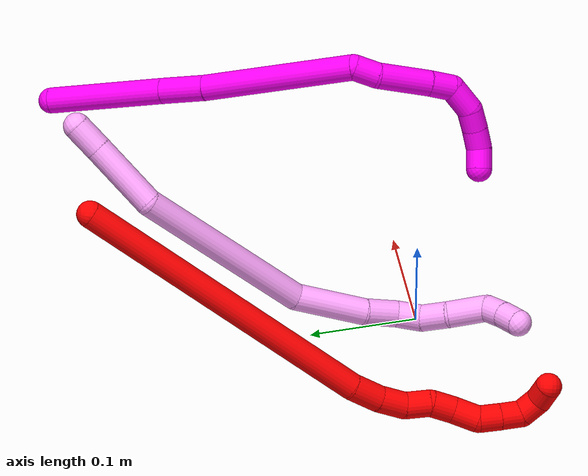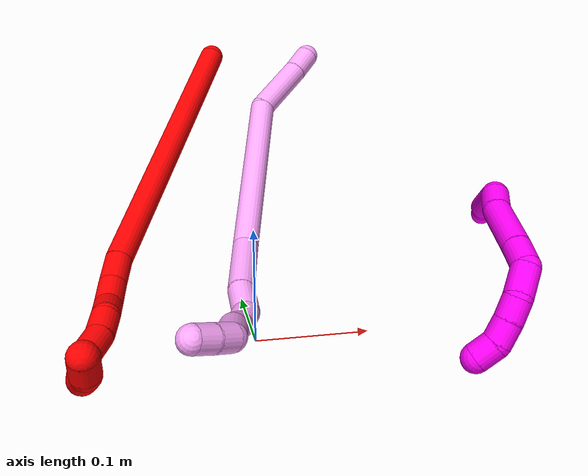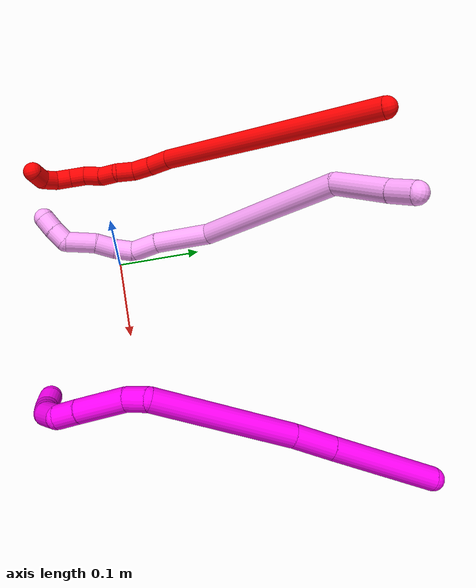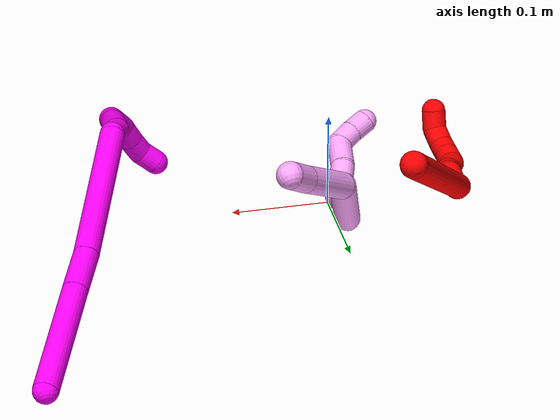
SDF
<sdf version="1.7">
 <world name="default">
  <model name="2">
   <static>0</static>
   <link name="2">
    <collision name="collision-cylinder-e_1_1_4">
     <pose>-0.052993 -0.046539 -0.128684 2.79457 -0.369477 -1.63482</pose>
     <geometry><cylinder><radius>0.0125</radius><length>0.293489</length></cylinder></geometry>
     <surface>
      <friction><ode><mu>1.16</mu><mu2>1.16</mu2><slip1>0</slip1><slip2>0</slip2></ode></friction>
      <contact><ode><kp>1e+06</kp><kd>1</kd><max_vel>0</max_vel><min_depth>0.001</min_depth></ode></contact>
     </surface>
    </collision>
    <visual name="visual-cylinder-e_1_1_4">
     <pose>-0.052993 -0.046539 -0.128684 2.79457 -0.369477 -1.63482</pose>
     <geometry><cylinder><radius>0.0125</radius><length>0.293489</length></cylinder></geometry>
     <material><ambient>1 0 0 1</ambient></material>
    </visual>
    <collision name="collision-cylinder-e_2_4_5">
     <pose>-0.110572 -0.095265 -0.27073 2.9794 -0.326565 -2.22502</pose>
     <geometry><cylinder><radius>0.0125</radius><length>0.028588</length></cylinder></geometry>
     <surface>
      <friction><ode><mu>1.16</mu><mu2>1.16</mu2><slip1>0</slip1><slip2>0</slip2></ode></friction>
      <contact><ode><kp>1e+06</kp><kd>1</kd><max_vel>0</max_vel><min_depth>0.001</min_depth></ode></contact>
     </surface>
    </collision>
    <visual name="visual-cylinder-e_2_4_5">
     <pose>-0.110572 -0.095265 -0.27073 2.9794 -0.326565 -2.22502</pose>
     <geometry><cylinder><radius>0.0125</radius><length>0.028588</length></cylinder></geometry>
     <material><ambient>1 0 0 1</ambient></material>
    </visual>
    <collision name="collision-cylinder-e_3_5_6">
     <pose>-0.117473 -0.098651 -0.296977 3.04875 -0.177037 -2.17718</pose>
     <geometry><cylinder><radius>0.0125</radius><length>0.026295</length></cylinder></geometry>
     <surface>
      <friction><ode><mu>1.16</mu><mu2>1.16</mu2><slip1>0</slip1><slip2>0</slip2></ode></friction>
      <contact><ode><kp>1e+06</kp><kd>1</kd><max_vel>0</max_vel><min_depth>0.001</min_depth></ode></contact>
     </surface>
    </collision>
    <visual name="visual-cylinder-e_3_5_6">
     <pose>-0.117473 -0.098651 -0.296977 3.04875 -0.177037 -2.17718</pose>
     <geometry><cylinder><radius>0.0125</radius><length>0.026295</length></cylinder></geometry>
     <material><ambient>1 0 0 1</ambient></material>
    </visual>
    <collision name="collision-cylinder-e_4_6_7">
     <pose>-0.116904 -0.099991 -0.321336 3.12934 0.246355 3.04266</pose>
     <geometry><cylinder><radius>0.0125</radius><length>0.023661</length></cylinder></geometry>
     <surface>
      <friction><ode><mu>1.16</mu><mu2>1.16</mu2><slip1>0</slip1><slip2>0</slip2></ode></friction>
      <contact><ode><kp>1e+06</kp><kd>1</kd><max_vel>0</max_vel><min_depth>0.001</min_depth></ode></contact>
     </surface>
    </collision>
    <visual name="visual-cylinder-e_4_6_7">
     <pose>-0.116904 -0.099991 -0.321336 3.12934 0.246355 3.04266</pose>
     <geometry><cylinder><radius>0.0125</radius><length>0.023661</length></cylinder></geometry>
     <material><ambient>1 0 0 1</ambient></material>
    </visual>
    <collision name="collision-cylinder-e_5_7_8">
     <pose>-0.115809 -0.101871 -0.343699 2.98324 -0.160958 -1.58719</pose>
     <geometry><cylinder><radius>0.0125</radius><length>0.022346</length></cylinder></geometry>
     <surface>
      <friction><ode><mu>1.16</mu><mu2>1.16</mu2><slip1>0</slip1><slip2>0</slip2></ode></friction>
      <contact><ode><kp>1e+06</kp><kd>1</kd><max_vel>0</max_vel><min_depth>0.001</min_depth></ode></contact>
     </surface>
    </collision>
    <visual name="visual-cylinder-e_5_7_8">
     <pose>-0.115809 -0.101871 -0.343699 2.98324 -0.160958 -1.58719</pose>
     <geometry><cylinder><radius>0.0125</radius><length>0.022346</length></cylinder></geometry>
     <material><ambient>1 0 0 1</ambient></material>
    </visual>
    <collision name="collision-cylinder-e_6_8_9">
     <pose>-0.118097 -0.108116 -0.366169 2.7705 -0.040027 -0.212467</pose>
     <geometry><cylinder><radius>0.0125</radius><length>0.024869</length></cylinder></geometry>
     <surface>
      <friction><ode><mu>1.16</mu><mu2>1.16</mu2><slip1>0</slip1><slip2>0</slip2></ode></friction>
      <contact><ode><kp>1e+06</kp><kd>1</kd><max_vel>0</max_vel><min_depth>0.001</min_depth></ode></contact>
     </surface>
    </collision>
    <visual name="visual-cylinder-e_6_8_9">
     <pose>-0.118097 -0.108116 -0.366169 2.7705 -0.040027 -0.212467</pose>
     <geometry><cylinder><radius>0.0125</radius><length>0.024869</length></cylinder></geometry>
     <material><ambient>1 0 0 1</ambient></material>
    </visual>
    <collision name="collision-cylinder-e_7_9_10">
     <pose>-0.116472 -0.112222 -0.387714 -3.10157 0.209714 -2.76579</pose>
     <geometry><cylinder><radius>0.0125</radius><length>0.020396</length></cylinder></geometry>
     <surface>
      <friction><ode><mu>1.16</mu><mu2>1.16</mu2><slip1>0</slip1><slip2>0</slip2></ode></friction>
      <contact><ode><kp>1e+06</kp><kd>1</kd><max_vel>0</max_vel><min_depth>0.001</min_depth></ode></contact>
     </surface>
    </collision>
    <visual name="visual-cylinder-e_7_9_10">
     <pose>-0.116472 -0.112222 -0.387714 -3.10157 0.209714 -2.76579</pose>
     <geometry><cylinder><radius>0.0125</radius><length>0.020396</length></cylinder></geometry>
     <material><ambient>1 0 0 1</ambient></material>
    </visual>
    <collision name="collision-cylinder-e_8_10_11">
     <pose>-0.112043 -0.111255 -0.407563 -3.08411 0.228844 -2.65137</pose>
     <geometry><cylinder><radius>0.0125</radius><length>0.020327</length></cylinder></geometry>
     <surface>
      <friction><ode><mu>1.16</mu><mu2>1.16</mu2><slip1>0</slip1><slip2>0</slip2></ode></friction>
      <contact><ode><kp>1e+06</kp><kd>1</kd><max_vel>0</max_vel><min_depth>0.001</min_depth></ode></contact>
     </surface>
    </collision>
    <visual name="visual-cylinder-e_8_10_11">
     <pose>-0.112043 -0.111255 -0.407563 -3.08411 0.228844 -2.65137</pose>
     <geometry><cylinder><radius>0.0125</radius><length>0.020327</length></cylinder></geometry>
     <material><ambient>1 0 0 1</ambient></material>
    </visual>
    <collision name="collision-cylinder-e_9_11_12">
     <pose>-0.102387 -0.108497 -0.423866 -2.81303 0.825465 -2.41777</pose>
     <geometry><cylinder><radius>0.0125</radius><length>0.020004</length></cylinder></geometry>
     <surface>
      <friction><ode><mu>1.16</mu><mu2>1.16</mu2><slip1>0</slip1><slip2>0</slip2></ode></friction>
      <contact><ode><kp>1e+06</kp><kd>1</kd><max_vel>0</max_vel><min_depth>0.001</min_depth></ode></contact>
     </surface>
    </collision>
    <visual name="visual-cylinder-e_9_11_12">
     <pose>-0.102387 -0.108497 -0.423866 -2.81303 0.825465 -2.41777</pose>
     <geometry><cylinder><radius>0.0125</radius><length>0.020004</length></cylinder></geometry>
     <material><ambient>1 0 0 1</ambient></material>
    </visual>
    <collision name="collision-cylinder-e_10_12_2">
     <pose>-0.085213 -0.106596 -0.432193 2.99145 1.37704 2.95928</pose>
     <geometry><cylinder><radius>0.0125</radius><length>0.020024</length></cylinder></geometry>
     <surface>
      <friction><ode><mu>1.16</mu><mu2>1.16</mu2><slip1>0</slip1><slip2>0</slip2></ode></friction>
      <contact><ode><kp>1e+06</kp><kd>1</kd><max_vel>0</max_vel><min_depth>0.001</min_depth></ode></contact>
     </surface>
    </collision>
    <visual name="visual-cylinder-e_10_12_2">
     <pose>-0.085213 -0.106596 -0.432193 2.99145 1.37704 2.95928</pose>
     <geometry><cylinder><radius>0.0125</radius><length>0.020024</length></cylinder></geometry>
     <material><ambient>1 0 0 1</ambient></material>
    </visual>
    <collision name="collision-sphere-2">
     <pose>-0.075388 -0.106885 -0.434099 0 -0 0</pose>
     <geometry><sphere><radius>0.0125</radius></sphere></geometry>
     <surface>
      <friction><ode><mu>1.16</mu><mu2>1.16</mu2><slip1>0</slip1><slip2>0</slip2></ode></friction>
      <contact><ode><kp>1e+06</kp><kd>1</kd><max_vel>0</max_vel><min_depth>0.001</min_depth></ode></contact>
     </surface>
    </collision>
    <visual name="visual-sphere-2">
     <pose>-0.075388 -0.106885 -0.434099 0 -0 0</pose>
     <geometry><sphere><radius>0.0125</radius></sphere></geometry>
     <material><ambient>1 0 0 1</ambient></material>
    </visual>
    <collision name="collision-sphere-12">
     <pose>-0.095037 -0.106308 -0.430287 0 -0 0</pose>
     <geometry><sphere><radius>0.0125</radius></sphere></geometry>
     <surface>
      <friction><ode><mu>1.16</mu><mu2>1.16</mu2><slip1>0</slip1><slip2>0</slip2></ode></friction>
      <contact><ode><kp>1e+06</kp><kd>1</kd><max_vel>0</max_vel><min_depth>0.001</min_depth></ode></contact>
     </surface>
    </collision>
    <visual name="visual-sphere-12">
     <pose>-0.095037 -0.106308 -0.430287 0 -0 0</pose>
     <geometry><sphere><radius>0.0125</radius></sphere></geometry>
     <material><ambient>1 0 0 1</ambient></material>
    </visual>
    <collision name="collision-sphere-11">
     <pose>-0.109738 -0.110686 -0.417445 0 -0 0</pose>
     <geometry><sphere><radius>0.0125</radius></sphere></geometry>
     <surface>
      <friction><ode><mu>1.16</mu><mu2>1.16</mu2><slip1>0</slip1><slip2>0</slip2></ode></friction>
      <contact><ode><kp>1e+06</kp><kd>1</kd><max_vel>0</max_vel><min_depth>0.001</min_depth></ode></contact>
     </surface>
    </collision>
    <visual name="visual-sphere-11">
     <pose>-0.109738 -0.110686 -0.417445 0 -0 0</pose>
     <geometry><sphere><radius>0.0125</radius></sphere></geometry>
     <material><ambient>1 0 0 1</ambient></material>
    </visual>
    <collision name="collision-sphere-10">
     <pose>-0.114349 -0.111823 -0.397681 0 -0 0</pose>
     <geometry><sphere><radius>0.0125</radius></sphere></geometry>
     <surface>
      <friction><ode><mu>1.16</mu><mu2>1.16</mu2><slip1>0</slip1><slip2>0</slip2></ode></friction>
      <contact><ode><kp>1e+06</kp><kd>1</kd><max_vel>0</max_vel><min_depth>0.001</min_depth></ode></contact>
     </surface>
    </collision>
    <visual name="visual-sphere-10">
     <pose>-0.114349 -0.111823 -0.397681 0 -0 0</pose>
     <geometry><sphere><radius>0.0125</radius></sphere></geometry>
     <material><ambient>1 0 0 1</ambient></material>
    </visual>
    <collision name="collision-sphere-9">
     <pose>-0.118595 -0.112621 -0.377748 0 -0 0</pose>
     <geometry><sphere><radius>0.0125</radius></sphere></geometry>
     <surface>
      <friction><ode><mu>1.16</mu><mu2>1.16</mu2><slip1>0</slip1><slip2>0</slip2></ode></friction>
      <contact><ode><kp>1e+06</kp><kd>1</kd><max_vel>0</max_vel><min_depth>0.001</min_depth></ode></contact>
     </surface>
    </collision>
    <visual name="visual-sphere-9">
     <pose>-0.118595 -0.112621 -0.377748 0 -0 0</pose>
     <geometry><sphere><radius>0.0125</radius></sphere></geometry>
     <material><ambient>1 0 0 1</ambient></material>
    </visual>
    <collision name="collision-sphere-4">
     <pose>-0.105987 -0.093078 -0.257369 0 -0 0</pose>
     <geometry><sphere><radius>0.0125</radius></sphere></geometry>
     <surface>
      <friction><ode><mu>1.16</mu><mu2>1.16</mu2><slip1>0</slip1><slip2>0</slip2></ode></friction>
      <contact><ode><kp>1e+06</kp><kd>1</kd><max_vel>0</max_vel><min_depth>0.001</min_depth></ode></contact>
     </surface>
    </collision>
    <visual name="visual-sphere-4">
     <pose>-0.105987 -0.093078 -0.257369 0 -0 0</pose>
     <geometry><sphere><radius>0.0125</radius></sphere></geometry>
     <material><ambient>1 0 0 1</ambient></material>
    </visual>
    <collision name="collision-sphere-1">
     <geometry><sphere><radius>0.0125</radius></sphere></geometry>
     <surface>
      <friction><ode><mu>1.16</mu><mu2>1.16</mu2><slip1>0</slip1><slip2>0</slip2></ode></friction>
      <contact><ode><kp>1e+06</kp><kd>1</kd><max_vel>0</max_vel><min_depth>0.001</min_depth></ode></contact>
     </surface>
    </collision>
    <visual name="visual-sphere-1">
     <geometry><sphere><radius>0.0125</radius></sphere></geometry>
     <material><ambient>1 0 0 1</ambient></material>
    </visual>
    <collision name="collision-sphere-8">
     <pose>-0.1176 -0.10361 -0.35459 0 -0 0</pose>
     <geometry><sphere><radius>0.0125</radius></sphere></geometry>
     <surface>
      <friction><ode><mu>1.16</mu><mu2>1.16</mu2><slip1>0</slip1><slip2>0</slip2></ode></friction>
      <contact><ode><kp>1e+06</kp><kd>1</kd><max_vel>0</max_vel><min_depth>0.001</min_depth></ode></contact>
     </surface>
    </collision>
    <visual name="visual-sphere-8">
     <pose>-0.1176 -0.10361 -0.35459 0 -0 0</pose>
     <geometry><sphere><radius>0.0125</radius></sphere></geometry>
     <material><ambient>1 0 0 1</ambient></material>
    </visual>
    <collision name="collision-sphere-5">
     <pose>-0.115158 -0.097451 -0.284091 0 -0 0</pose>
     <geometry><sphere><radius>0.0125</radius></sphere></geometry>
     <surface>
      <friction><ode><mu>1.16</mu><mu2>1.16</mu2><slip1>0</slip1><slip2>0</slip2></ode></friction>
      <contact><ode><kp>1e+06</kp><kd>1</kd><max_vel>0</max_vel><min_depth>0.001</min_depth></ode></contact>
     </surface>
    </collision>
    <visual name="visual-sphere-5">
     <pose>-0.115158 -0.097451 -0.284091 0 -0 0</pose>
     <geometry><sphere><radius>0.0125</radius></sphere></geometry>
     <material><ambient>1 0 0 1</ambient></material>
    </visual>
    <collision name="collision-sphere-6">
     <pose>-0.119789 -0.09985 -0.309863 0 -0 0</pose>
     <geometry><sphere><radius>0.0125</radius></sphere></geometry>
     <surface>
      <friction><ode><mu>1.16</mu><mu2>1.16</mu2><slip1>0</slip1><slip2>0</slip2></ode></friction>
      <contact><ode><kp>1e+06</kp><kd>1</kd><max_vel>0</max_vel><min_depth>0.001</min_depth></ode></contact>
     </surface>
    </collision>
    <visual name="visual-sphere-6">
     <pose>-0.119789 -0.09985 -0.309863 0 -0 0</pose>
     <geometry><sphere><radius>0.0125</radius></sphere></geometry>
     <material><ambient>1 0 0 1</ambient></material>
    </visual>
    <collision name="collision-sphere-7">
     <pose>-0.114018 -0.100132 -0.332808 0 -0 0</pose>
     <geometry><sphere><radius>0.0125</radius></sphere></geometry>
     <surface>
      <friction><ode><mu>1.16</mu><mu2>1.16</mu2><slip1>0</slip1><slip2>0</slip2></ode></friction>
      <contact><ode><kp>1e+06</kp><kd>1</kd><max_vel>0</max_vel><min_depth>0.001</min_depth></ode></contact>
     </surface>
    </collision>
    <visual name="visual-sphere-7">
     <pose>-0.114018 -0.100132 -0.332808 0 -0 0</pose>
     <geometry><sphere><radius>0.0125</radius></sphere></geometry>
     <material><ambient>1 0 0 1</ambient></material>
    </visual>
    <inertial>
     <pose>-0.077003 -0.070325 -0.222064 0 -0 0</pose>
     <mass>0.5</mass>
     <inertia>
      <ixx>-0.002118</ixx>
      <ixy>0</ixy>
      <ixz>0</ixz>
      <iyy>-0.001592</iyy>
      <iyz>0</iyz>
      <izz>0.001402</izz>
     </inertia>
    </inertial>
   </link>
   <pose>-0.004037 0.302473 0.217456 -0.105834 -1.32331 -1.52316</pose>
  </model>
  <model name="4">
   <static>0</static>
   <link name="4">
    <collision name="collision-cylinder-e_1_1_4">
     <pose>-0.009813 -0.010236 -0.001189 1.68644 -0.76099 -0.844278</pose>
     <geometry><cylinder><radius>0.0125</radius><length>0.02846</length></cylinder></geometry>
     <surface>
      <friction><ode><mu>1.16</mu><mu2>1.16</mu2><slip1>0</slip1><slip2>0</slip2></ode></friction>
      <contact><ode><kp>1e+06</kp><kd>1</kd><max_vel>0</max_vel><min_depth>0.001</min_depth></ode></contact>
     </surface>
    </collision>
    <visual name="visual-cylinder-e_1_1_4">
     <pose>-0.009813 -0.010236 -0.001189 1.68644 -0.76099 -0.844278</pose>
     <geometry><cylinder><radius>0.0125</radius><length>0.02846</length></cylinder></geometry>
     <material><ambient>1 0.65098 0.996078 1</ambient></material>
    </visual>
    <collision name="collision-cylinder-e_2_4_5">
     <pose>-0.041295 -0.045817 -0.005262 1.68409 -0.704169 -0.780873</pose>
     <geometry><cylinder><radius>0.0125</radius><length>0.066939</length></cylinder></geometry>
     <surface>
      <friction><ode><mu>1.16</mu><mu2>1.16</mu2><slip1>0</slip1><slip2>0</slip2></ode></friction>
      <contact><ode><kp>1e+06</kp><kd>1</kd><max_vel>0</max_vel><min_depth>0.001</min_depth></ode></contact>
     </surface>
    </collision>
    <visual name="visual-cylinder-e_2_4_5">
     <pose>-0.041295 -0.045817 -0.005262 1.68409 -0.704169 -0.780873</pose>
     <geometry><cylinder><radius>0.0125</radius><length>0.066939</length></cylinder></geometry>
     <material><ambient>1 0.65098 0.996078 1</ambient></material>
    </visual>
    <collision name="collision-cylinder-e_3_5_6">
     <pose>-0.144178 -0.103566 -0.024049 2.02704 -1.15256 -1.61274</pose>
     <geometry><cylinder><radius>0.0125</radius><length>0.17775</length></cylinder></geometry>
     <surface>
      <friction><ode><mu>1.16</mu><mu2>1.16</mu2><slip1>0</slip1><slip2>0</slip2></ode></friction>
      <contact><ode><kp>1e+06</kp><kd>1</kd><max_vel>0</max_vel><min_depth>0.001</min_depth></ode></contact>
     </surface>
    </collision>
    <visual name="visual-cylinder-e_3_5_6">
     <pose>-0.144178 -0.103566 -0.024049 2.02704 -1.15256 -1.61274</pose>
     <geometry><cylinder><radius>0.0125</radius><length>0.17775</length></cylinder></geometry>
     <material><ambient>1 0.65098 0.996078 1</ambient></material>
    </visual>
    <collision name="collision-cylinder-e_4_6_7">
     <pose>-0.250936 -0.148209 -0.058559 2.5598 -0.853753 -1.97732</pose>
     <geometry><cylinder><radius>0.0125</radius><length>0.067779</length></cylinder></geometry>
     <surface>
      <friction><ode><mu>1.16</mu><mu2>1.16</mu2><slip1>0</slip1><slip2>0</slip2></ode></friction>
      <contact><ode><kp>1e+06</kp><kd>1</kd><max_vel>0</max_vel><min_depth>0.001</min_depth></ode></contact>
     </surface>
    </collision>
    <visual name="visual-cylinder-e_4_6_7">
     <pose>-0.250936 -0.148209 -0.058559 2.5598 -0.853753 -1.97732</pose>
     <geometry><cylinder><radius>0.0125</radius><length>0.067779</length></cylinder></geometry>
     <material><ambient>1 0.65098 0.996078 1</ambient></material>
    </visual>
    <collision name="collision-cylinder-e_5_7_8">
     <pose>-0.289189 -0.163077 -0.086394 2.86401 -0.924068 -2.59463</pose>
     <geometry><cylinder><radius>0.0125</radius><length>0.031849</length></cylinder></geometry>
     <surface>
      <friction><ode><mu>1.16</mu><mu2>1.16</mu2><slip1>0</slip1><slip2>0</slip2></ode></friction>
      <contact><ode><kp>1e+06</kp><kd>1</kd><max_vel>0</max_vel><min_depth>0.001</min_depth></ode></contact>
     </surface>
    </collision>
    <visual name="visual-cylinder-e_5_7_8">
     <pose>-0.289189 -0.163077 -0.086394 2.86401 -0.924068 -2.59463</pose>
     <geometry><cylinder><radius>0.0125</radius><length>0.031849</length></cylinder></geometry>
     <material><ambient>1 0.65098 0.996078 1</ambient></material>
    </visual>
    <collision name="collision-cylinder-e_6_8_9">
     <pose>-0.308039 -0.172014 -0.103743 2.48123 -0.538439 -1.35564</pose>
     <geometry><cylinder><radius>0.0125</radius><length>0.023953</length></cylinder></geometry>
     <surface>
      <friction><ode><mu>1.16</mu><mu2>1.16</mu2><slip1>0</slip1><slip2>0</slip2></ode></friction>
      <contact><ode><kp>1e+06</kp><kd>1</kd><max_vel>0</max_vel><min_depth>0.001</min_depth></ode></contact>
     </surface>
    </collision>
    <visual name="visual-cylinder-e_6_8_9">
     <pose>-0.308039 -0.172014 -0.103743 2.48123 -0.538439 -1.35564</pose>
     <geometry><cylinder><radius>0.0125</radius><length>0.023953</length></cylinder></geometry>
     <material><ambient>1 0.65098 0.996078 1</ambient></material>
    </visual>
    <collision name="collision-cylinder-e_7_9_10">
     <pose>-0.316682 -0.184027 -0.123286 2.67828 -0.193391 -0.78024</pose>
     <geometry><cylinder><radius>0.0125</radius><length>0.026023</length></cylinder></geometry>
     <surface>
      <friction><ode><mu>1.16</mu><mu2>1.16</mu2><slip1>0</slip1><slip2>0</slip2></ode></friction>
      <contact><ode><kp>1e+06</kp><kd>1</kd><max_vel>0</max_vel><min_depth>0.001</min_depth></ode></contact>
     </surface>
    </collision>
    <visual name="visual-cylinder-e_7_9_10">
     <pose>-0.316682 -0.184027 -0.123286 2.67828 -0.193391 -0.78024</pose>
     <geometry><cylinder><radius>0.0125</radius><length>0.026023</length></cylinder></geometry>
     <material><ambient>1 0.65098 0.996078 1</ambient></material>
    </visual>
    <collision name="collision-cylinder-e_8_10_11">
     <pose>-0.326081 -0.19505 -0.150637 2.81948 -0.38979 -1.76434</pose>
     <geometry><cylinder><radius>0.0125</radius><length>0.036307</length></cylinder></geometry>
     <surface>
      <friction><ode><mu>1.16</mu><mu2>1.16</mu2><slip1>0</slip1><slip2>0</slip2></ode></friction>
      <contact><ode><kp>1e+06</kp><kd>1</kd><max_vel>0</max_vel><min_depth>0.001</min_depth></ode></contact>
     </surface>
    </collision>
    <visual name="visual-cylinder-e_8_10_11">
     <pose>-0.326081 -0.19505 -0.150637 2.81948 -0.38979 -1.76434</pose>
     <geometry><cylinder><radius>0.0125</radius><length>0.036307</length></cylinder></geometry>
     <material><ambient>1 0.65098 0.996078 1</ambient></material>
    </visual>
    <collision name="collision-cylinder-e_9_11_12">
     <pose>-0.332969 -0.209146 -0.172175 2.13935 0.000926 0.001691</pose>
     <geometry><cylinder><radius>0.0125</radius><length>0.020839</length></cylinder></geometry>
     <surface>
      <friction><ode><mu>1.16</mu><mu2>1.16</mu2><slip1>0</slip1><slip2>0</slip2></ode></friction>
      <contact><ode><kp>1e+06</kp><kd>1</kd><max_vel>0</max_vel><min_depth>0.001</min_depth></ode></contact>
     </surface>
    </collision>
    <visual name="visual-cylinder-e_9_11_12">
     <pose>-0.332969 -0.209146 -0.172175 2.13935 0.000926 0.001691</pose>
     <geometry><cylinder><radius>0.0125</radius><length>0.020839</length></cylinder></geometry>
     <material><ambient>1 0.65098 0.996078 1</ambient></material>
    </visual>
    <collision name="collision-cylinder-e_10_12_2">
     <pose>-0.332452 -0.226843 -0.182396 2.04797 0.05054 0.082996</pose>
     <geometry><cylinder><radius>0.0125</radius><length>0.020101</length></cylinder></geometry>
     <surface>
      <friction><ode><mu>1.16</mu><mu2>1.16</mu2><slip1>0</slip1><slip2>0</slip2></ode></friction>
      <contact><ode><kp>1e+06</kp><kd>1</kd><max_vel>0</max_vel><min_depth>0.001</min_depth></ode></contact>
     </surface>
    </collision>
    <visual name="visual-cylinder-e_10_12_2">
     <pose>-0.332452 -0.226843 -0.182396 2.04797 0.05054 0.082996</pose>
     <geometry><cylinder><radius>0.0125</radius><length>0.020101</length></cylinder></geometry>
     <material><ambient>1 0.65098 0.996078 1</ambient></material>
    </visual>
    <collision name="collision-sphere-2">
     <pose>-0.331944 -0.23576 -0.187006 0 -0 0</pose>
     <geometry><sphere><radius>0.0125</radius></sphere></geometry>
     <surface>
      <friction><ode><mu>1.16</mu><mu2>1.16</mu2><slip1>0</slip1><slip2>0</slip2></ode></friction>
      <contact><ode><kp>1e+06</kp><kd>1</kd><max_vel>0</max_vel><min_depth>0.001</min_depth></ode></contact>
     </surface>
    </collision>
    <visual name="visual-sphere-2">
     <pose>-0.331944 -0.23576 -0.187006 0 -0 0</pose>
     <geometry><sphere><radius>0.0125</radius></sphere></geometry>
     <material><ambient>1 0.65098 0.996078 1</ambient></material>
    </visual>
    <collision name="collision-sphere-12">
     <pose>-0.33296 -0.217927 -0.177785 0 -0 0</pose>
     <geometry><sphere><radius>0.0125</radius></sphere></geometry>
     <surface>
      <friction><ode><mu>1.16</mu><mu2>1.16</mu2><slip1>0</slip1><slip2>0</slip2></ode></friction>
      <contact><ode><kp>1e+06</kp><kd>1</kd><max_vel>0</max_vel><min_depth>0.001</min_depth></ode></contact>
     </surface>
    </collision>
    <visual name="visual-sphere-12">
     <pose>-0.33296 -0.217927 -0.177785 0 -0 0</pose>
     <geometry><sphere><radius>0.0125</radius></sphere></geometry>
     <material><ambient>1 0.65098 0.996078 1</ambient></material>
    </visual>
    <collision name="collision-sphere-11">
     <pose>-0.332979 -0.200366 -0.166566 0 -0 0</pose>
     <geometry><sphere><radius>0.0125</radius></sphere></geometry>
     <surface>
      <friction><ode><mu>1.16</mu><mu2>1.16</mu2><slip1>0</slip1><slip2>0</slip2></ode></friction>
      <contact><ode><kp>1e+06</kp><kd>1</kd><max_vel>0</max_vel><min_depth>0.001</min_depth></ode></contact>
     </surface>
    </collision>
    <visual name="visual-sphere-11">
     <pose>-0.332979 -0.200366 -0.166566 0 -0 0</pose>
     <geometry><sphere><radius>0.0125</radius></sphere></geometry>
     <material><ambient>1 0.65098 0.996078 1</ambient></material>
    </visual>
    <collision name="collision-sphere-10">
     <pose>-0.319182 -0.189734 -0.134709 0 -0 0</pose>
     <geometry><sphere><radius>0.0125</radius></sphere></geometry>
     <surface>
      <friction><ode><mu>1.16</mu><mu2>1.16</mu2><slip1>0</slip1><slip2>0</slip2></ode></friction>
      <contact><ode><kp>1e+06</kp><kd>1</kd><max_vel>0</max_vel><min_depth>0.001</min_depth></ode></contact>
     </surface>
    </collision>
    <visual name="visual-sphere-10">
     <pose>-0.319182 -0.189734 -0.134709 0 -0 0</pose>
     <geometry><sphere><radius>0.0125</radius></sphere></geometry>
     <material><ambient>1 0.65098 0.996078 1</ambient></material>
    </visual>
    <collision name="collision-sphere-9">
     <pose>-0.314181 -0.178321 -0.111863 0 -0 0</pose>
     <geometry><sphere><radius>0.0125</radius></sphere></geometry>
     <surface>
      <friction><ode><mu>1.16</mu><mu2>1.16</mu2><slip1>0</slip1><slip2>0</slip2></ode></friction>
      <contact><ode><kp>1e+06</kp><kd>1</kd><max_vel>0</max_vel><min_depth>0.001</min_depth></ode></contact>
     </surface>
    </collision>
    <visual name="visual-sphere-9">
     <pose>-0.314181 -0.178321 -0.111863 0 -0 0</pose>
     <geometry><sphere><radius>0.0125</radius></sphere></geometry>
     <material><ambient>1 0.65098 0.996078 1</ambient></material>
    </visual>
    <collision name="collision-sphere-4">
     <pose>-0.019627 -0.020471 -0.002378 0 -0 0</pose>
     <geometry><sphere><radius>0.0125</radius></sphere></geometry>
     <surface>
      <friction><ode><mu>1.16</mu><mu2>1.16</mu2><slip1>0</slip1><slip2>0</slip2></ode></friction>
      <contact><ode><kp>1e+06</kp><kd>1</kd><max_vel>0</max_vel><min_depth>0.001</min_depth></ode></contact>
     </surface>
    </collision>
    <visual name="visual-sphere-4">
     <pose>-0.019627 -0.020471 -0.002378 0 -0 0</pose>
     <geometry><sphere><radius>0.0125</radius></sphere></geometry>
     <material><ambient>1 0.65098 0.996078 1</ambient></material>
    </visual>
    <collision name="collision-sphere-1">
     <geometry><sphere><radius>0.0125</radius></sphere></geometry>
     <surface>
      <friction><ode><mu>1.16</mu><mu2>1.16</mu2><slip1>0</slip1><slip2>0</slip2></ode></friction>
      <contact><ode><kp>1e+06</kp><kd>1</kd><max_vel>0</max_vel><min_depth>0.001</min_depth></ode></contact>
     </surface>
    </collision>
    <visual name="visual-sphere-1">
     <geometry><sphere><radius>0.0125</radius></sphere></geometry>
     <material><ambient>1 0.65098 0.996078 1</ambient></material>
    </visual>
    <collision name="collision-sphere-8">
     <pose>-0.301898 -0.165707 -0.095622 0 -0 0</pose>
     <geometry><sphere><radius>0.0125</radius></sphere></geometry>
     <surface>
      <friction><ode><mu>1.16</mu><mu2>1.16</mu2><slip1>0</slip1><slip2>0</slip2></ode></friction>
      <contact><ode><kp>1e+06</kp><kd>1</kd><max_vel>0</max_vel><min_depth>0.001</min_depth></ode></contact>
     </surface>
    </collision>
    <visual name="visual-sphere-8">
     <pose>-0.301898 -0.165707 -0.095622 0 -0 0</pose>
     <geometry><sphere><radius>0.0125</radius></sphere></geometry>
     <material><ambient>1 0.65098 0.996078 1</ambient></material>
    </visual>
    <collision name="collision-sphere-5">
     <pose>-0.062963 -0.071162 -0.008146 0 -0 0</pose>
     <geometry><sphere><radius>0.0125</radius></sphere></geometry>
     <surface>
      <friction><ode><mu>1.16</mu><mu2>1.16</mu2><slip1>0</slip1><slip2>0</slip2></ode></friction>
      <contact><ode><kp>1e+06</kp><kd>1</kd><max_vel>0</max_vel><min_depth>0.001</min_depth></ode></contact>
     </surface>
    </collision>
    <visual name="visual-sphere-5">
     <pose>-0.062963 -0.071162 -0.008146 0 -0 0</pose>
     <geometry><sphere><radius>0.0125</radius></sphere></geometry>
     <material><ambient>1 0.65098 0.996078 1</ambient></material>
    </visual>
    <collision name="collision-sphere-6">
     <pose>-0.225392 -0.135971 -0.039952 0 -0 0</pose>
     <geometry><sphere><radius>0.0125</radius></sphere></geometry>
     <surface>
      <friction><ode><mu>1.16</mu><mu2>1.16</mu2><slip1>0</slip1><slip2>0</slip2></ode></friction>
      <contact><ode><kp>1e+06</kp><kd>1</kd><max_vel>0</max_vel><min_depth>0.001</min_depth></ode></contact>
     </surface>
    </collision>
    <visual name="visual-sphere-6">
     <pose>-0.225392 -0.135971 -0.039952 0 -0 0</pose>
     <geometry><sphere><radius>0.0125</radius></sphere></geometry>
     <material><ambient>1 0.65098 0.996078 1</ambient></material>
    </visual>
    <collision name="collision-sphere-7">
     <pose>-0.276481 -0.160448 -0.077166 0 -0 0</pose>
     <geometry><sphere><radius>0.0125</radius></sphere></geometry>
     <surface>
      <friction><ode><mu>1.16</mu><mu2>1.16</mu2><slip1>0</slip1><slip2>0</slip2></ode></friction>
      <contact><ode><kp>1e+06</kp><kd>1</kd><max_vel>0</max_vel><min_depth>0.001</min_depth></ode></contact>
     </surface>
    </collision>
    <visual name="visual-sphere-7">
     <pose>-0.276481 -0.160448 -0.077166 0 -0 0</pose>
     <geometry><sphere><radius>0.0125</radius></sphere></geometry>
     <material><ambient>1 0.65098 0.996078 1</ambient></material>
    </visual>
    <inertial>
     <pose>-0.191939 -0.123831 -0.059596 0 -0 0</pose>
     <mass>0.5</mass>
     <inertia>
      <ixx>-0.000259</ixx>
      <ixy>0</ixy>
      <ixz>0</ixz>
      <iyy>0.000178</iyy>
      <iyz>0</iyz>
      <izz>0.000681</izz>
     </inertia>
    </inertial>
   </link>
   <pose>0.105116 0.295935 0.216573 3.06605 -0.953988 1.80916</pose>
  </model>
  <model name="10">
   <static>0</static>
   <link name="10">
    <collision name="collision-cylinder-e_1_1_4">
     <pose>-0.014728 -0.023194 -0.051266 2.71673 -0.256011 -1.07605</pose>
     <geometry><cylinder><radius>0.0125</radius><length>0.116328</length></cylinder></geometry>
     <surface>
      <friction><ode><mu>1.16</mu><mu2>1.16</mu2><slip1>0</slip1><slip2>0</slip2></ode></friction>
      <contact><ode><kp>1e+06</kp><kd>1</kd><max_vel>0</max_vel><min_depth>0.001</min_depth></ode></contact>
     </surface>
    </collision>
    <visual name="visual-cylinder-e_1_1_4">
     <pose>-0.014728 -0.023194 -0.051266 2.71673 -0.256011 -1.07605</pose>
     <geometry><cylinder><radius>0.0125</radius><length>0.116328</length></cylinder></geometry>
     <material><ambient>1 0 0.964706 1</ambient></material>
    </visual>
    <collision name="collision-cylinder-e_2_4_5">
     <pose>-0.035049 -0.055335 -0.121621 2.70326 -0.259295 -1.05912</pose>
     <geometry><cylinder><radius>0.0125</radius><length>0.043622</length></cylinder></geometry>
     <surface>
      <friction><ode><mu>1.16</mu><mu2>1.16</mu2><slip1>0</slip1><slip2>0</slip2></ode></friction>
      <contact><ode><kp>1e+06</kp><kd>1</kd><max_vel>0</max_vel><min_depth>0.001</min_depth></ode></contact>
     </surface>
    </collision>
    <visual name="visual-cylinder-e_2_4_5">
     <pose>-0.035049 -0.055335 -0.121621 2.70326 -0.259295 -1.05912</pose>
     <geometry><cylinder><radius>0.0125</radius><length>0.043622</length></cylinder></geometry>
     <material><ambient>1 0 0.964706 1</ambient></material>
    </visual>
    <collision name="collision-cylinder-e_3_5_6">
     <pose>-0.059 -0.09061 -0.209064 2.77395 -0.245572 -1.17198</pose>
     <geometry><cylinder><radius>0.0125</radius><length>0.151031</length></cylinder></geometry>
     <surface>
      <friction><ode><mu>1.16</mu><mu2>1.16</mu2><slip1>0</slip1><slip2>0</slip2></ode></friction>
      <contact><ode><kp>1e+06</kp><kd>1</kd><max_vel>0</max_vel><min_depth>0.001</min_depth></ode></contact>
     </surface>
    </collision>
    <visual name="visual-cylinder-e_3_5_6">
     <pose>-0.059 -0.09061 -0.209064 2.77395 -0.245572 -1.17198</pose>
     <geometry><cylinder><radius>0.0125</radius><length>0.151031</length></cylinder></geometry>
     <material><ambient>1 0 0.964706 1</ambient></material>
    </visual>
    <collision name="collision-cylinder-e_4_6_7">
     <pose>-0.087028 -0.119942 -0.284052 2.71618 -0.925325 -2.32432</pose>
     <geometry><cylinder><radius>0.0125</radius><length>0.024209</length></cylinder></geometry>
     <surface>
      <friction><ode><mu>1.16</mu><mu2>1.16</mu2><slip1>0</slip1><slip2>0</slip2></ode></friction>
      <contact><ode><kp>1e+06</kp><kd>1</kd><max_vel>0</max_vel><min_depth>0.001</min_depth></ode></contact>
     </surface>
    </collision>
    <visual name="visual-cylinder-e_4_6_7">
     <pose>-0.087028 -0.119942 -0.284052 2.71618 -0.925325 -2.32432</pose>
     <geometry><cylinder><radius>0.0125</radius><length>0.024209</length></cylinder></geometry>
     <material><ambient>1 0 0.964706 1</ambient></material>
    </visual>
    <collision name="collision-cylinder-e_5_7_8">
     <pose>-0.117495 -0.123026 -0.306607 3.13663 -0.917402 -3.13155</pose>
     <geometry><cylinder><radius>0.0125</radius><length>0.052385</length></cylinder></geometry>
     <surface>
      <friction><ode><mu>1.16</mu><mu2>1.16</mu2><slip1>0</slip1><slip2>0</slip2></ode></friction>
      <contact><ode><kp>1e+06</kp><kd>1</kd><max_vel>0</max_vel><min_depth>0.001</min_depth></ode></contact>
     </surface>
    </collision>
    <visual name="visual-cylinder-e_5_7_8">
     <pose>-0.117495 -0.123026 -0.306607 3.13663 -0.917402 -3.13155</pose>
     <geometry><cylinder><radius>0.0125</radius><length>0.052385</length></cylinder></geometry>
     <material><ambient>1 0 0.964706 1</ambient></material>
    </visual>
    <collision name="collision-cylinder-e_6_8_9">
     <pose>-0.148412 -0.123124 -0.32939 3.13885 -0.974956 -3.13643</pose>
     <geometry><cylinder><radius>0.0125</radius><length>0.024452</length></cylinder></geometry>
     <surface>
      <friction><ode><mu>1.16</mu><mu2>1.16</mu2><slip1>0</slip1><slip2>0</slip2></ode></friction>
      <contact><ode><kp>1e+06</kp><kd>1</kd><max_vel>0</max_vel><min_depth>0.001</min_depth></ode></contact>
     </surface>
    </collision>
    <visual name="visual-cylinder-e_6_8_9">
     <pose>-0.148412 -0.123124 -0.32939 3.13885 -0.974956 -3.13643</pose>
     <geometry><cylinder><radius>0.0125</radius><length>0.024452</length></cylinder></geometry>
     <material><ambient>1 0 0.964706 1</ambient></material>
    </visual>
    <collision name="collision-cylinder-e_7_9_10">
     <pose>-0.17144 -0.128073 -0.336724 1.66636 -1.20445 -1.29523</pose>
     <geometry><cylinder><radius>0.0125</radius><length>0.027653</length></cylinder></geometry>
     <surface>
      <friction><ode><mu>1.16</mu><mu2>1.16</mu2><slip1>0</slip1><slip2>0</slip2></ode></friction>
      <contact><ode><kp>1e+06</kp><kd>1</kd><max_vel>0</max_vel><min_depth>0.001</min_depth></ode></contact>
     </surface>
    </collision>
    <visual name="visual-cylinder-e_7_9_10">
     <pose>-0.17144 -0.128073 -0.336724 1.66636 -1.20445 -1.29523</pose>
     <geometry><cylinder><radius>0.0125</radius><length>0.027653</length></cylinder></geometry>
     <material><ambient>1 0 0.964706 1</ambient></material>
    </visual>
    <collision name="collision-cylinder-e_8_10_11">
     <pose>-0.193188 -0.136142 -0.333613 0.719384 -1.07651 -0.441724</pose>
     <geometry><cylinder><radius>0.0125</radius><length>0.020084</length></cylinder></geometry>
     <surface>
      <friction><ode><mu>1.16</mu><mu2>1.16</mu2><slip1>0</slip1><slip2>0</slip2></ode></friction>
      <contact><ode><kp>1e+06</kp><kd>1</kd><max_vel>0</max_vel><min_depth>0.001</min_depth></ode></contact>
     </surface>
    </collision>
    <visual name="visual-cylinder-e_8_10_11">
     <pose>-0.193188 -0.136142 -0.333613 0.719384 -1.07651 -0.441724</pose>
     <geometry><cylinder><radius>0.0125</radius><length>0.020084</length></cylinder></geometry>
     <material><ambient>1 0 0.964706 1</ambient></material>
    </visual>
    <collision name="collision-cylinder-e_9_11_12">
     <pose>-0.210399 -0.143204 -0.326064 0.780024 -0.983015 -0.433208</pose>
     <geometry><cylinder><radius>0.0125</radius><length>0.020117</length></cylinder></geometry>
     <surface>
      <friction><ode><mu>1.16</mu><mu2>1.16</mu2><slip1>0</slip1><slip2>0</slip2></ode></friction>
      <contact><ode><kp>1e+06</kp><kd>1</kd><max_vel>0</max_vel><min_depth>0.001</min_depth></ode></contact>
     </surface>
    </collision>
    <visual name="visual-cylinder-e_9_11_12">
     <pose>-0.210399 -0.143204 -0.326064 0.780024 -0.983015 -0.433208</pose>
     <geometry><cylinder><radius>0.0125</radius><length>0.020117</length></cylinder></geometry>
     <material><ambient>1 0 0.964706 1</ambient></material>
    </visual>
    <collision name="collision-cylinder-e_10_12_2">
     <pose>-0.224048 -0.153998 -0.316989 0.931382 -0.552454 -0.283019</pose>
     <geometry><cylinder><radius>0.0125</radius><length>0.02012</length></cylinder></geometry>
     <surface>
      <friction><ode><mu>1.16</mu><mu2>1.16</mu2><slip1>0</slip1><slip2>0</slip2></ode></friction>
      <contact><ode><kp>1e+06</kp><kd>1</kd><max_vel>0</max_vel><min_depth>0.001</min_depth></ode></contact>
     </surface>
    </collision>
    <visual name="visual-cylinder-e_10_12_2">
     <pose>-0.224048 -0.153998 -0.316989 0.931382 -0.552454 -0.283019</pose>
     <geometry><cylinder><radius>0.0125</radius><length>0.02012</length></cylinder></geometry>
     <material><ambient>1 0 0.964706 1</ambient></material>
    </visual>
    <collision name="collision-sphere-2">
     <pose>-0.229328 -0.16087 -0.311879 0 -0 0</pose>
     <geometry><sphere><radius>0.0125</radius></sphere></geometry>
     <surface>
      <friction><ode><mu>1.16</mu><mu2>1.16</mu2><slip1>0</slip1><slip2>0</slip2></ode></friction>
      <contact><ode><kp>1e+06</kp><kd>1</kd><max_vel>0</max_vel><min_depth>0.001</min_depth></ode></contact>
     </surface>
    </collision>
    <visual name="visual-sphere-2">
     <pose>-0.229328 -0.16087 -0.311879 0 -0 0</pose>
     <geometry><sphere><radius>0.0125</radius></sphere></geometry>
     <material><ambient>1 0 0.964706 1</ambient></material>
    </visual>
    <collision name="collision-sphere-12">
     <pose>-0.218769 -0.147127 -0.322099 0 -0 0</pose>
     <geometry><sphere><radius>0.0125</radius></sphere></geometry>
     <surface>
      <friction><ode><mu>1.16</mu><mu2>1.16</mu2><slip1>0</slip1><slip2>0</slip2></ode></friction>
      <contact><ode><kp>1e+06</kp><kd>1</kd><max_vel>0</max_vel><min_depth>0.001</min_depth></ode></contact>
     </surface>
    </collision>
    <visual name="visual-sphere-12">
     <pose>-0.218769 -0.147127 -0.322099 0 -0 0</pose>
     <geometry><sphere><radius>0.0125</radius></sphere></geometry>
     <material><ambient>1 0 0.964706 1</ambient></material>
    </visual>
    <collision name="collision-sphere-11">
     <pose>-0.202029 -0.139281 -0.330029 0 -0 0</pose>
     <geometry><sphere><radius>0.0125</radius></sphere></geometry>
     <surface>
      <friction><ode><mu>1.16</mu><mu2>1.16</mu2><slip1>0</slip1><slip2>0</slip2></ode></friction>
      <contact><ode><kp>1e+06</kp><kd>1</kd><max_vel>0</max_vel><min_depth>0.001</min_depth></ode></contact>
     </surface>
    </collision>
    <visual name="visual-sphere-11">
     <pose>-0.202029 -0.139281 -0.330029 0 -0 0</pose>
     <geometry><sphere><radius>0.0125</radius></sphere></geometry>
     <material><ambient>1 0 0.964706 1</ambient></material>
    </visual>
    <collision name="collision-sphere-10">
     <pose>-0.184348 -0.133003 -0.337196 0 -0 0</pose>
     <geometry><sphere><radius>0.0125</radius></sphere></geometry>
     <surface>
      <friction><ode><mu>1.16</mu><mu2>1.16</mu2><slip1>0</slip1><slip2>0</slip2></ode></friction>
      <contact><ode><kp>1e+06</kp><kd>1</kd><max_vel>0</max_vel><min_depth>0.001</min_depth></ode></contact>
     </surface>
    </collision>
    <visual name="visual-sphere-10">
     <pose>-0.184348 -0.133003 -0.337196 0 -0 0</pose>
     <geometry><sphere><radius>0.0125</radius></sphere></geometry>
     <material><ambient>1 0 0.964706 1</ambient></material>
    </visual>
    <collision name="collision-sphere-9">
     <pose>-0.158531 -0.123143 -0.336251 0 -0 0</pose>
     <geometry><sphere><radius>0.0125</radius></sphere></geometry>
     <surface>
      <friction><ode><mu>1.16</mu><mu2>1.16</mu2><slip1>0</slip1><slip2>0</slip2></ode></friction>
      <contact><ode><kp>1e+06</kp><kd>1</kd><max_vel>0</max_vel><min_depth>0.001</min_depth></ode></contact>
     </surface>
    </collision>
    <visual name="visual-sphere-9">
     <pose>-0.158531 -0.123143 -0.336251 0 -0 0</pose>
     <geometry><sphere><radius>0.0125</radius></sphere></geometry>
     <material><ambient>1 0 0.964706 1</ambient></material>
    </visual>
    <collision name="collision-sphere-4">
     <pose>-0.029457 -0.046387 -0.102532 0 -0 0</pose>
     <geometry><sphere><radius>0.0125</radius></sphere></geometry>
     <surface>
      <friction><ode><mu>1.16</mu><mu2>1.16</mu2><slip1>0</slip1><slip2>0</slip2></ode></friction>
      <contact><ode><kp>1e+06</kp><kd>1</kd><max_vel>0</max_vel><min_depth>0.001</min_depth></ode></contact>
     </surface>
    </collision>
    <visual name="visual-sphere-4">
     <pose>-0.029457 -0.046387 -0.102532 0 -0 0</pose>
     <geometry><sphere><radius>0.0125</radius></sphere></geometry>
     <material><ambient>1 0 0.964706 1</ambient></material>
    </visual>
    <collision name="collision-sphere-1">
     <geometry><sphere><radius>0.0125</radius></sphere></geometry>
     <surface>
      <friction><ode><mu>1.16</mu><mu2>1.16</mu2><slip1>0</slip1><slip2>0</slip2></ode></friction>
      <contact><ode><kp>1e+06</kp><kd>1</kd><max_vel>0</max_vel><min_depth>0.001</min_depth></ode></contact>
     </surface>
    </collision>
    <visual name="visual-sphere-1">
     <geometry><sphere><radius>0.0125</radius></sphere></geometry>
     <material><ambient>1 0 0.964706 1</ambient></material>
    </visual>
    <collision name="collision-sphere-8">
     <pose>-0.138292 -0.123105 -0.322528 0 -0 0</pose>
     <geometry><sphere><radius>0.0125</radius></sphere></geometry>
     <surface>
      <friction><ode><mu>1.16</mu><mu2>1.16</mu2><slip1>0</slip1><slip2>0</slip2></ode></friction>
      <contact><ode><kp>1e+06</kp><kd>1</kd><max_vel>0</max_vel><min_depth>0.001</min_depth></ode></contact>
     </surface>
    </collision>
    <visual name="visual-sphere-8">
     <pose>-0.138292 -0.123105 -0.322528 0 -0 0</pose>
     <geometry><sphere><radius>0.0125</radius></sphere></geometry>
     <material><ambient>1 0 0.964706 1</ambient></material>
    </visual>
    <collision name="collision-sphere-5">
     <pose>-0.040642 -0.064283 -0.140709 0 -0 0</pose>
     <geometry><sphere><radius>0.0125</radius></sphere></geometry>
     <surface>
      <friction><ode><mu>1.16</mu><mu2>1.16</mu2><slip1>0</slip1><slip2>0</slip2></ode></friction>
      <contact><ode><kp>1e+06</kp><kd>1</kd><max_vel>0</max_vel><min_depth>0.001</min_depth></ode></contact>
     </surface>
    </collision>
    <visual name="visual-sphere-5">
     <pose>-0.040642 -0.064283 -0.140709 0 -0 0</pose>
     <geometry><sphere><radius>0.0125</radius></sphere></geometry>
     <material><ambient>1 0 0.964706 1</ambient></material>
    </visual>
    <collision name="collision-sphere-6">
     <pose>-0.077359 -0.116937 -0.277419 0 -0 0</pose>
     <geometry><sphere><radius>0.0125</radius></sphere></geometry>
     <surface>
      <friction><ode><mu>1.16</mu><mu2>1.16</mu2><slip1>0</slip1><slip2>0</slip2></ode></friction>
      <contact><ode><kp>1e+06</kp><kd>1</kd><max_vel>0</max_vel><min_depth>0.001</min_depth></ode></contact>
     </surface>
    </collision>
    <visual name="visual-sphere-6">
     <pose>-0.077359 -0.116937 -0.277419 0 -0 0</pose>
     <geometry><sphere><radius>0.0125</radius></sphere></geometry>
     <material><ambient>1 0 0.964706 1</ambient></material>
    </visual>
    <collision name="collision-sphere-7">
     <pose>-0.096697 -0.122947 -0.290685 0 -0 0</pose>
     <geometry><sphere><radius>0.0125</radius></sphere></geometry>
     <surface>
      <friction><ode><mu>1.16</mu><mu2>1.16</mu2><slip1>0</slip1><slip2>0</slip2></ode></friction>
      <contact><ode><kp>1e+06</kp><kd>1</kd><max_vel>0</max_vel><min_depth>0.001</min_depth></ode></contact>
     </surface>
    </collision>
    <visual name="visual-sphere-7">
     <pose>-0.096697 -0.122947 -0.290685 0 -0 0</pose>
     <geometry><sphere><radius>0.0125</radius></sphere></geometry>
     <material><ambient>1 0 0.964706 1</ambient></material>
    </visual>
    <inertial>
     <pose>-0.08281 -0.086822 -0.20557 0 -0 0</pose>
     <mass>0.5</mass>
     <inertia>
      <ixx>-0.000237</ixx>
      <ixy>0</ixy>
      <ixz>0</ixz>
      <iyy>-0.000508</iyy>
      <iyz>0</iyz>
      <izz>0.000267</izz>
     </inertia>
    </inertial>
   </link>
   <pose>0.328063 0.288428 0.014898 -2.88973 -0.986104 1.35176</pose>
  </model>
 </world>
</sdf>
